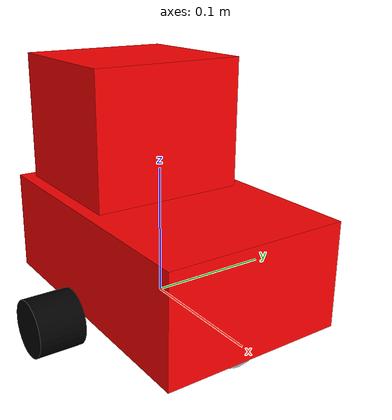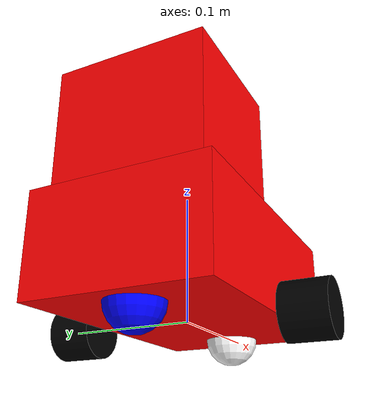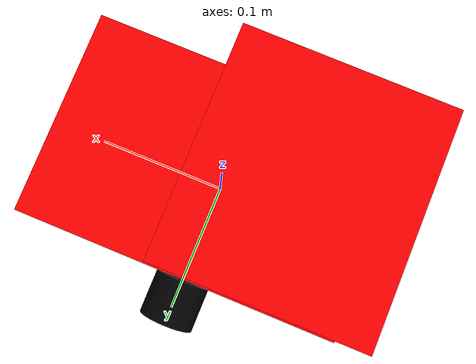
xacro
<?xml version="1.0"?>
<robot xmlns:xacro="http://www.ros.org/wiki/xacro">

    <xacro:include filename="inertial_macros.xacro"/>

    <material name="white">
        <color rgba="1 1 1 1"/>
    </material>

    <material name="black">
        <color rgba="0 0 0 1"/>
    </material>

    <material name="red">
        <color rgba="1 0 0 1"/>
    </material>

    <material name="green">
        <color rgba="0 1 0 1"/>
    </material>

    <material name="blue">
        <color rgba="0 0 1 1"/>
    </material>

    <!-- BASE LINK -->

    <link name="base_link">
    </link>

    <!-- BASE_FOOTPRINT LINK -->
    <joint name="base_footprint_joint" type="fixed">
        <parent link="base_link"/>
        <child link="base_footprint"/>
        <origin xyz="0 0 0" rpy="0 0 0"/>
    </joint>

    <link name="base_footprint">
    </link>

    <!-- CHASSIS LINK -->

    <joint name="chassis_joint" type="fixed">
        <parent link="base_link"/>
        <child link="chassis"/>
        <origin xyz="-0.095 0 0"/>
    </joint>

    <link name="chassis">
        <visual>
            <origin xyz="0.1 0 0.04"/>
            <geometry>
                <box size="0.220 0.14 0.08"/>
            </geometry>
            <material name="red"/>
        </visual>
        <collision>
            <origin xyz="0.1 0 0.04"/>
            <geometry>
                <box size="0.220 0.14 0.08"/>
            </geometry>
        </collision>
        <xacro:inertial_box mass="1.7" x="0.20" y="0.14" z="0.08">
            <origin xyz="0.1 0 0.04" rpy="0 0 0 "/>
        </xacro:inertial_box>
    </link>

    <gazebo reference="chassis">
        <material>Gazebo/Red</material>
    </gazebo>

    <!-- RISERS LINK   -->
    <joint name="risers_joint" type="fixed">
        <parent link="chassis"/>
        <child link="risers_link"/>
        <origin xyz="0.0 0 0.08"/>
    </joint>
    <link name="risers_link">
        <visual>
            <origin xyz="0.055 0 0.05"/>
            <geometry>
                <box size="0.110 0.12 0.1"/>
            </geometry>
            <material name="red"/>
        </visual>
        <collision>
            <origin xyz="0.055 0 0.130"/>
            <geometry>
                <box size="0.110 0.12 0.1"/>
            </geometry>
        </collision>
        <xacro:inertial_box mass=".1" x="0.110" y="0.12" z="0.05">
            <origin xyz="0.055 0 0.130" rpy="0 0 0 "/>
        </xacro:inertial_box>
    </link>

    <gazebo reference="risers_link">
        <material>Gazebo/Red</material>
    </gazebo>

    <!-- LEFT WHEEL LINK -->

    <joint name="left_wheel_joint" type="continuous">
        <parent link="base_link"/>
        <child link="left_wheel"/>
        <origin xyz="0.0 0.094 0.0" rpy="-${pi/2} 0 0" />
        <axis xyz="0 0 1"/>
    </joint>

    <link name="left_wheel">
        <visual>
            <geometry>
                <cylinder radius="0.0215" length="0.035"/>
            </geometry>
            <material name="black"/>
        </visual>
        <collision>
            <geometry>
                <cylinder radius="0.0215" length="0.035"/>
            </geometry>
        </collision>
        <xacro:inertial_cylinder mass="0.1" length="0.035" radius="0.0215">
            <origin xyz="0 0 0" rpy="0 0 0"/>
        </xacro:inertial_cylinder>
    </link>

    <gazebo reference="left_wheel">
        <material>Gazebo/Black</material>
    </gazebo>

    <!-- RIGHT WHEEL LINK -->

    <joint name="right_wheel_joint" type="continuous">
        <parent link="base_link"/>
        <child link="right_wheel"/>
        <origin xyz="0.0 -0.094 0.0" rpy="${pi/2} 0 0" />
        <axis xyz="0 0 -1"/>
    </joint>

    <link name="right_wheel">
        <visual>
            <geometry>
                <cylinder radius="0.0215" length="0.035"/>
            </geometry>
            <material name="black"/>
        </visual>
        <collision>
            <geometry>
                <cylinder radius="0.0215" length="0.035"/>
            </geometry>
        </collision>
        <xacro:inertial_cylinder mass="0.1" length="0.035" radius="0.0215">
            <origin xyz="0 0 0" rpy="0 0 0"/>
        </xacro:inertial_cylinder>
    </link>

    <gazebo reference="right_wheel">
        <material>Gazebo/Black</material>
    </gazebo>

    <!-- FRONT CASTER WHEEL LINK -->

    <joint name="front_caster_wheel_joint" type="fixed">
        <parent link="chassis"/>
        <child link="front_caster_wheel"/>
        <origin xyz=".18 0.0 0.0"/>
    </joint>

    <link name="front_caster_wheel">
        <visual>
            <geometry>
                <sphere radius="0.0215"/>
            </geometry>
            <material name="white"/>
        </visual>
        <collision>
            <geometry>
                <sphere radius="0.0215"/>
            </geometry>
        </collision>
        <xacro:inertial_sphere mass="0.1" radius="0.0215">
            <origin xyz="0 0 0" rpy="0 0 0"/>
        </xacro:inertial_sphere>
    </link>

    <gazebo reference="front_caster_wheel">
        <material>Gazebo/White</material>
        <mu1 value=".001"/>
        <mu2 value=".001"/>
    </gazebo>

    <!-- REAR CASTER WHEEL LINK -->

    <joint name="rear_caster_wheel_joint" type="fixed">
        <parent link="chassis"/>
        <child link="rear_caster_wheel"/>
        <origin xyz=".0215 0.0 0.0"/>
    </joint>

    <link name="rear_caster_wheel">
        <visual>
            <geometry>
                <sphere radius="0.0215"/>
            </geometry>
            <material name="blue"/>
        </visual>
        <collision>
            <geometry>
                <sphere radius="0.0215"/>
            </geometry>
        </collision>
        <xacro:inertial_sphere mass="0.1" radius="0.0215">
            <origin xyz="0 0 0" rpy="0 0 0"/>
        </xacro:inertial_sphere>
    </link>

    <gazebo reference="rear_caster_wheel">
        <material>Gazebo/Blue</material>
        <mu1 value=".001"/>
        <mu2 value=".001"/>
    </gazebo>

</robot>
